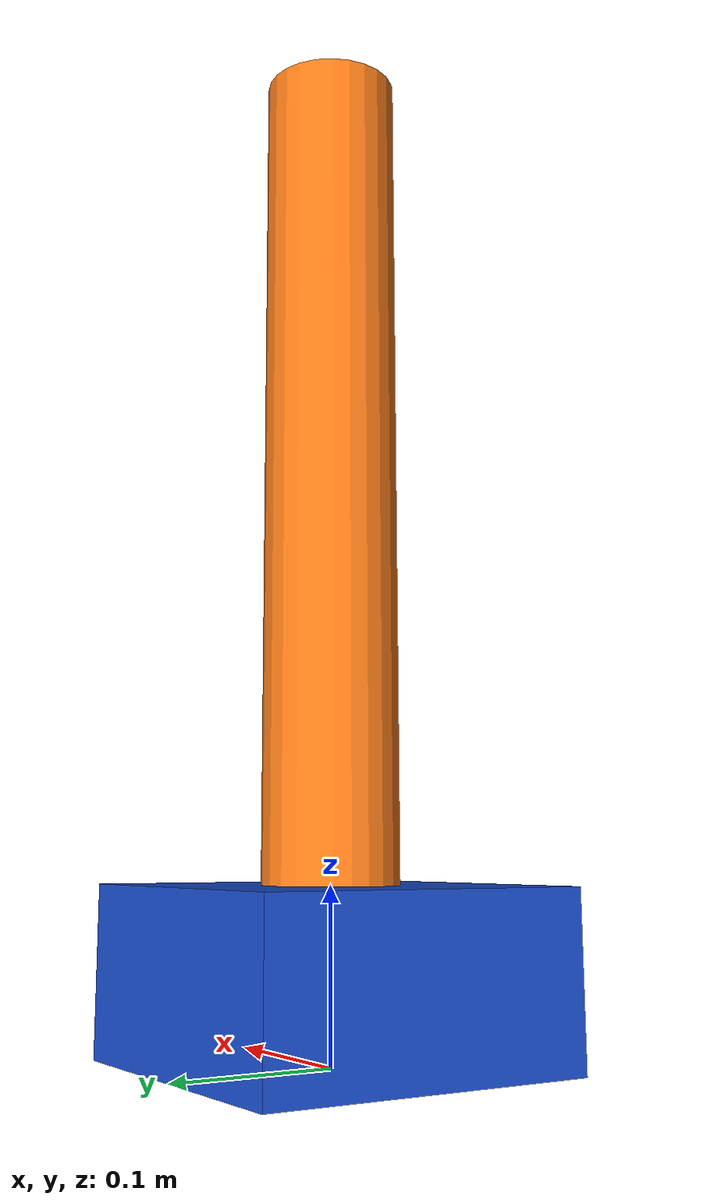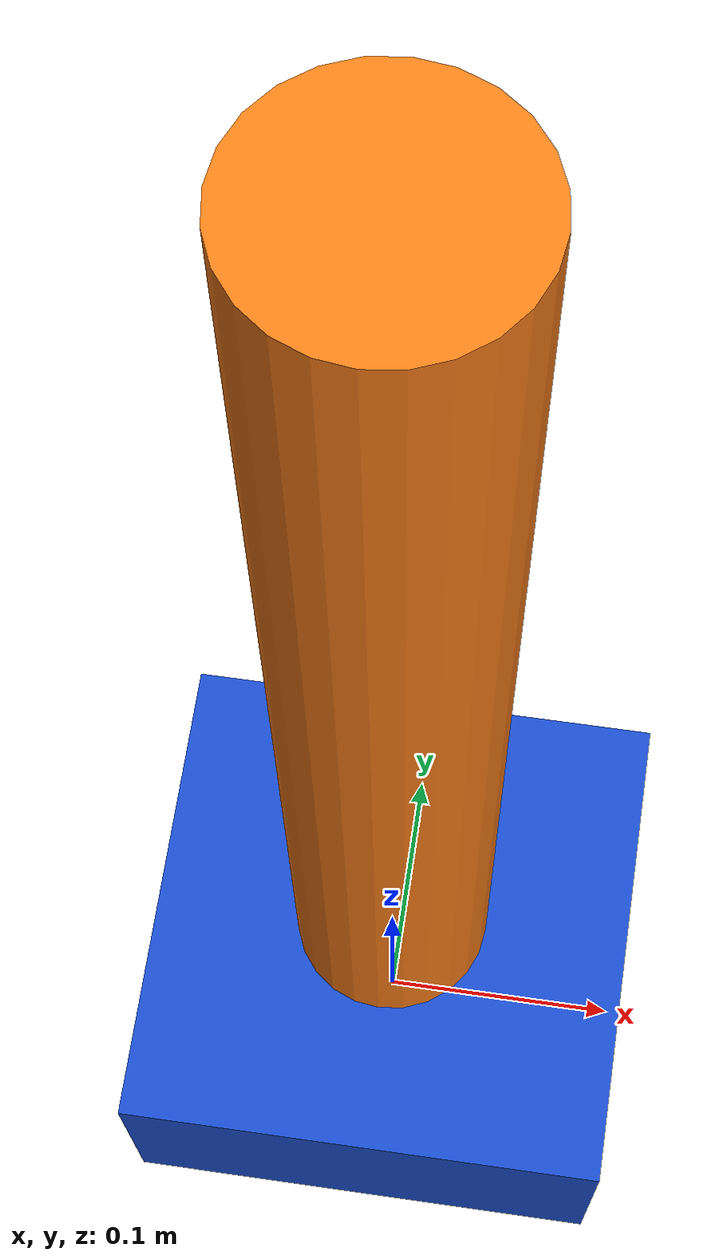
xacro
<?xml version="1.0"?>
<robot name="my_first_arm" xmlns:xacro="http://www.ros.org/wiki/xacro">

  <!-- Basic dimensions -->
  <xacro:property name="base_size" value="0.2"/>
  <xacro:property name="link_length" value="0.5"/>
  <xacro:property name="link_radius" value="0.04"/>

  <!-- Base link -->
  <link name="base_link">
    <visual>
      <origin xyz="0 0 0.05" rpy="0 0 0"/>
      <geometry>
        <box size="${base_size} ${base_size} 0.1"/>
      </geometry>
      <material name="blue">
        <color rgba="0.1 0.3 0.8 1.0"/>
      </material>
    </visual>
  </link>

  <!-- Arm link -->
  <link name="link1">
    <visual>
      <origin xyz="0 0 ${link_length/2.0}" rpy="0 0 0"/>
      <geometry>
        <cylinder radius="${link_radius}" length="${link_length}"/>
      </geometry>
      <material name="orange">
        <color rgba="1.0 0.5 0.1 1.0"/>
      </material>
    </visual>
  </link>

  <!-- Revolute joint -->
  <joint name="joint1" type="revolute">
    <parent link="base_link"/>
    <child link="link1"/>
    <origin xyz="0 0 0.1" rpy="0 0 0"/>
    <axis xyz="0 1 0"/>
    <limit lower="-1.57" upper="1.57" effort="10" velocity="1.0"/>
  </joint>

</robot>
